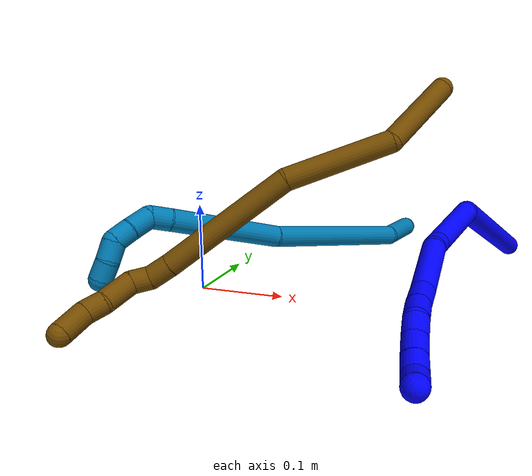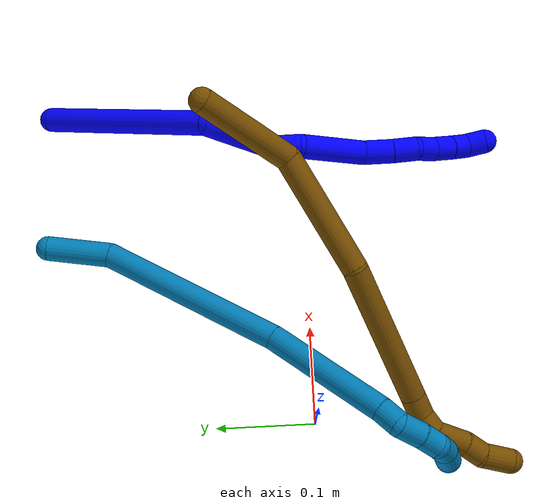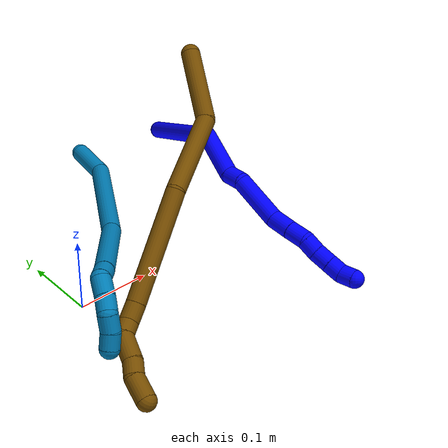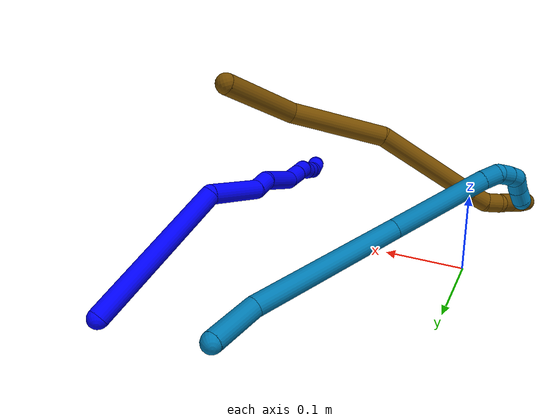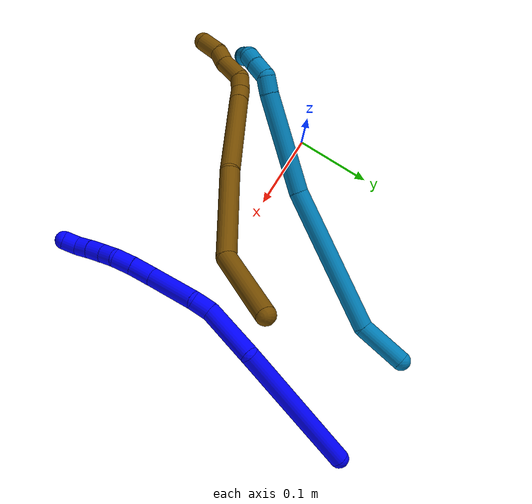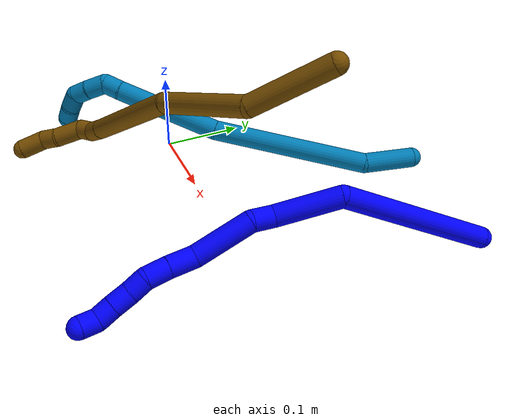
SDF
<sdf version="1.7">
 <world name="default">
  <model name="1">
   <static>0</static>
   <link name="1">
    <collision name="collision-cylinder-e_1_1_4">
     <pose>0.05638 -0.037189 -0.065543 2.62549 0.642316 1.80021</pose>
     <geometry><cylinder><radius>0.0125</radius><length>0.18823</length></cylinder></geometry>
     <surface>
      <friction><ode><mu>1.16</mu><mu2>1.16</mu2><slip1>0</slip1><slip2>0</slip2></ode></friction>
      <contact><ode><kp>1e+06</kp><kd>1</kd><max_vel>0</max_vel><min_depth>0.001</min_depth></ode></contact>
     </surface>
    </collision>
    <visual name="visual-cylinder-e_1_1_4">
     <pose>0.05638 -0.037189 -0.065543 2.62549 0.642316 1.80021</pose>
     <geometry><cylinder><radius>0.0125</radius><length>0.18823</length></cylinder></geometry>
     <material><ambient>0 0 1 1</ambient></material>
    </visual>
    <collision name="collision-cylinder-e_2_4_5">
     <pose>0.114122 -0.105321 -0.153749 2.20296 0.035507 0.069997</pose>
     <geometry><cylinder><radius>0.0125</radius><length>0.076755</length></cylinder></geometry>
     <surface>
      <friction><ode><mu>1.16</mu><mu2>1.16</mu2><slip1>0</slip1><slip2>0</slip2></ode></friction>
      <contact><ode><kp>1e+06</kp><kd>1</kd><max_vel>0</max_vel><min_depth>0.001</min_depth></ode></contact>
     </surface>
    </collision>
    <visual name="visual-cylinder-e_2_4_5">
     <pose>0.114122 -0.105321 -0.153749 2.20296 0.035507 0.069997</pose>
     <geometry><cylinder><radius>0.0125</radius><length>0.076755</length></cylinder></geometry>
     <material><ambient>0 0 1 1</ambient></material>
    </visual>
    <collision name="collision-cylinder-e_3_5_6">
     <pose>0.117973 -0.142558 -0.187363 2.61988 0.194553 0.700948</pose>
     <geometry><cylinder><radius>0.0125</radius><length>0.025749</length></cylinder></geometry>
     <surface>
      <friction><ode><mu>1.16</mu><mu2>1.16</mu2><slip1>0</slip1><slip2>0</slip2></ode></friction>
      <contact><ode><kp>1e+06</kp><kd>1</kd><max_vel>0</max_vel><min_depth>0.001</min_depth></ode></contact>
     </surface>
    </collision>
    <visual name="visual-cylinder-e_3_5_6">
     <pose>0.117973 -0.142558 -0.187363 2.61988 0.194553 0.700948</pose>
     <geometry><cylinder><radius>0.0125</radius><length>0.025749</length></cylinder></geometry>
     <material><ambient>0 0 1 1</ambient></material>
    </visual>
    <collision name="collision-cylinder-e_4_6_7">
     <pose>0.113312 -0.17193 -0.223152 2.39292 -0.207846 -0.518999</pose>
     <geometry><cylinder><radius>0.0125</radius><length>0.069299</length></cylinder></geometry>
     <surface>
      <friction><ode><mu>1.16</mu><mu2>1.16</mu2><slip1>0</slip1><slip2>0</slip2></ode></friction>
      <contact><ode><kp>1e+06</kp><kd>1</kd><max_vel>0</max_vel><min_depth>0.001</min_depth></ode></contact>
     </surface>
    </collision>
    <visual name="visual-cylinder-e_4_6_7">
     <pose>0.113312 -0.17193 -0.223152 2.39292 -0.207846 -0.518999</pose>
     <geometry><cylinder><radius>0.0125</radius><length>0.069299</length></cylinder></geometry>
     <material><ambient>0 0 1 1</ambient></material>
    </visual>
    <collision name="collision-cylinder-e_5_7_8">
     <pose>0.106541 -0.203095 -0.26092 2.58263 0.024795 0.086348</pose>
     <geometry><cylinder><radius>0.0125</radius><length>0.030513</length></cylinder></geometry>
     <surface>
      <friction><ode><mu>1.16</mu><mu2>1.16</mu2><slip1>0</slip1><slip2>0</slip2></ode></friction>
      <contact><ode><kp>1e+06</kp><kd>1</kd><max_vel>0</max_vel><min_depth>0.001</min_depth></ode></contact>
     </surface>
    </collision>
    <visual name="visual-cylinder-e_5_7_8">
     <pose>0.106541 -0.203095 -0.26092 2.58263 0.024795 0.086348</pose>
     <geometry><cylinder><radius>0.0125</radius><length>0.030513</length></cylinder></geometry>
     <material><ambient>0 0 1 1</ambient></material>
    </visual>
    <collision name="collision-cylinder-e_6_8_9">
     <pose>0.106536 -0.217521 -0.285051 2.62666 -0.029731 -0.1128</pose>
     <geometry><cylinder><radius>0.0125</radius><length>0.025749</length></cylinder></geometry>
     <surface>
      <friction><ode><mu>1.16</mu><mu2>1.16</mu2><slip1>0</slip1><slip2>0</slip2></ode></friction>
      <contact><ode><kp>1e+06</kp><kd>1</kd><max_vel>0</max_vel><min_depth>0.001</min_depth></ode></contact>
     </surface>
    </collision>
    <visual name="visual-cylinder-e_6_8_9">
     <pose>0.106536 -0.217521 -0.285051 2.62666 -0.029731 -0.1128</pose>
     <geometry><cylinder><radius>0.0125</radius><length>0.025749</length></cylinder></geometry>
     <material><ambient>0 0 1 1</ambient></material>
    </visual>
    <collision name="collision-cylinder-e_7_9_10">
     <pose>0.10222 -0.230234 -0.303656 2.43078 -0.382739 -0.962143</pose>
     <geometry><cylinder><radius>0.0125</radius><length>0.021066</length></cylinder></geometry>
     <surface>
      <friction><ode><mu>1.16</mu><mu2>1.16</mu2><slip1>0</slip1><slip2>0</slip2></ode></friction>
      <contact><ode><kp>1e+06</kp><kd>1</kd><max_vel>0</max_vel><min_depth>0.001</min_depth></ode></contact>
     </surface>
    </collision>
    <visual name="visual-cylinder-e_7_9_10">
     <pose>0.10222 -0.230234 -0.303656 2.43078 -0.382739 -0.962143</pose>
     <geometry><cylinder><radius>0.0125</radius><length>0.021066</length></cylinder></geometry>
     <material><ambient>0 0 1 1</ambient></material>
    </visual>
    <collision name="collision-cylinder-e_8_10_11">
     <pose>0.095186 -0.24257 -0.319888 2.54763 -0.283205 -0.871867</pose>
     <geometry><cylinder><radius>0.0125</radius><length>0.022188</length></cylinder></geometry>
     <surface>
      <friction><ode><mu>1.16</mu><mu2>1.16</mu2><slip1>0</slip1><slip2>0</slip2></ode></friction>
      <contact><ode><kp>1e+06</kp><kd>1</kd><max_vel>0</max_vel><min_depth>0.001</min_depth></ode></contact>
     </surface>
    </collision>
    <visual name="visual-cylinder-e_8_10_11">
     <pose>0.095186 -0.24257 -0.319888 2.54763 -0.283205 -0.871867</pose>
     <geometry><cylinder><radius>0.0125</radius><length>0.022188</length></cylinder></geometry>
     <material><ambient>0 0 1 1</ambient></material>
    </visual>
    <collision name="collision-cylinder-e_9_11_12">
     <pose>0.088803 -0.253685 -0.336683 2.56748 -0.33315 -1.03544</pose>
     <geometry><cylinder><radius>0.0125</radius><length>0.020081</length></cylinder></geometry>
     <surface>
      <friction><ode><mu>1.16</mu><mu2>1.16</mu2><slip1>0</slip1><slip2>0</slip2></ode></friction>
      <contact><ode><kp>1e+06</kp><kd>1</kd><max_vel>0</max_vel><min_depth>0.001</min_depth></ode></contact>
     </surface>
    </collision>
    <visual name="visual-cylinder-e_9_11_12">
     <pose>0.088803 -0.253685 -0.336683 2.56748 -0.33315 -1.03544</pose>
     <geometry><cylinder><radius>0.0125</radius><length>0.020081</length></cylinder></geometry>
     <material><ambient>0 0 1 1</ambient></material>
    </visual>
    <collision name="collision-cylinder-e_10_12_2">
     <pose>0.086436 -0.262387 -0.354152 2.78409 0.090113 0.4891</pose>
     <geometry><cylinder><radius>0.0125</radius><length>0.020369</length></cylinder></geometry>
     <surface>
      <friction><ode><mu>1.16</mu><mu2>1.16</mu2><slip1>0</slip1><slip2>0</slip2></ode></friction>
      <contact><ode><kp>1e+06</kp><kd>1</kd><max_vel>0</max_vel><min_depth>0.001</min_depth></ode></contact>
     </surface>
    </collision>
    <visual name="visual-cylinder-e_10_12_2">
     <pose>0.086436 -0.262387 -0.354152 2.78409 0.090113 0.4891</pose>
     <geometry><cylinder><radius>0.0125</radius><length>0.020369</length></cylinder></geometry>
     <material><ambient>0 0 1 1</ambient></material>
    </visual>
    <collision name="collision-sphere-2">
     <pose>0.087352 -0.265937 -0.363654 0 -0 0</pose>
     <geometry><sphere><radius>0.0125</radius></sphere></geometry>
     <surface>
      <friction><ode><mu>1.16</mu><mu2>1.16</mu2><slip1>0</slip1><slip2>0</slip2></ode></friction>
      <contact><ode><kp>1e+06</kp><kd>1</kd><max_vel>0</max_vel><min_depth>0.001</min_depth></ode></contact>
     </surface>
    </collision>
    <visual name="visual-sphere-2">
     <pose>0.087352 -0.265937 -0.363654 0 -0 0</pose>
     <geometry><sphere><radius>0.0125</radius></sphere></geometry>
     <material><ambient>0 0 1 1</ambient></material>
    </visual>
    <collision name="collision-sphere-12">
     <pose>0.085519 -0.258838 -0.34465 0 -0 0</pose>
     <geometry><sphere><radius>0.0125</radius></sphere></geometry>
     <surface>
      <friction><ode><mu>1.16</mu><mu2>1.16</mu2><slip1>0</slip1><slip2>0</slip2></ode></friction>
      <contact><ode><kp>1e+06</kp><kd>1</kd><max_vel>0</max_vel><min_depth>0.001</min_depth></ode></contact>
     </surface>
    </collision>
    <visual name="visual-sphere-12">
     <pose>0.085519 -0.258838 -0.34465 0 -0 0</pose>
     <geometry><sphere><radius>0.0125</radius></sphere></geometry>
     <material><ambient>0 0 1 1</ambient></material>
    </visual>
    <collision name="collision-sphere-11">
     <pose>0.092086 -0.248532 -0.328716 0 -0 0</pose>
     <geometry><sphere><radius>0.0125</radius></sphere></geometry>
     <surface>
      <friction><ode><mu>1.16</mu><mu2>1.16</mu2><slip1>0</slip1><slip2>0</slip2></ode></friction>
      <contact><ode><kp>1e+06</kp><kd>1</kd><max_vel>0</max_vel><min_depth>0.001</min_depth></ode></contact>
     </surface>
    </collision>
    <visual name="visual-sphere-11">
     <pose>0.092086 -0.248532 -0.328716 0 -0 0</pose>
     <geometry><sphere><radius>0.0125</radius></sphere></geometry>
     <material><ambient>0 0 1 1</ambient></material>
    </visual>
    <collision name="collision-sphere-10">
     <pose>0.098286 -0.236609 -0.311061 0 -0 0</pose>
     <geometry><sphere><radius>0.0125</radius></sphere></geometry>
     <surface>
      <friction><ode><mu>1.16</mu><mu2>1.16</mu2><slip1>0</slip1><slip2>0</slip2></ode></friction>
      <contact><ode><kp>1e+06</kp><kd>1</kd><max_vel>0</max_vel><min_depth>0.001</min_depth></ode></contact>
     </surface>
    </collision>
    <visual name="visual-sphere-10">
     <pose>0.098286 -0.236609 -0.311061 0 -0 0</pose>
     <geometry><sphere><radius>0.0125</radius></sphere></geometry>
     <material><ambient>0 0 1 1</ambient></material>
    </visual>
    <collision name="collision-sphere-9">
     <pose>0.106153 -0.223859 -0.296251 0 -0 0</pose>
     <geometry><sphere><radius>0.0125</radius></sphere></geometry>
     <surface>
      <friction><ode><mu>1.16</mu><mu2>1.16</mu2><slip1>0</slip1><slip2>0</slip2></ode></friction>
      <contact><ode><kp>1e+06</kp><kd>1</kd><max_vel>0</max_vel><min_depth>0.001</min_depth></ode></contact>
     </surface>
    </collision>
    <visual name="visual-sphere-9">
     <pose>0.106153 -0.223859 -0.296251 0 -0 0</pose>
     <geometry><sphere><radius>0.0125</radius></sphere></geometry>
     <material><ambient>0 0 1 1</ambient></material>
    </visual>
    <collision name="collision-sphere-4">
     <pose>0.11276 -0.074379 -0.131087 0 -0 0</pose>
     <geometry><sphere><radius>0.0125</radius></sphere></geometry>
     <surface>
      <friction><ode><mu>1.16</mu><mu2>1.16</mu2><slip1>0</slip1><slip2>0</slip2></ode></friction>
      <contact><ode><kp>1e+06</kp><kd>1</kd><max_vel>0</max_vel><min_depth>0.001</min_depth></ode></contact>
     </surface>
    </collision>
    <visual name="visual-sphere-4">
     <pose>0.11276 -0.074379 -0.131087 0 -0 0</pose>
     <geometry><sphere><radius>0.0125</radius></sphere></geometry>
     <material><ambient>0 0 1 1</ambient></material>
    </visual>
    <collision name="collision-sphere-1">
     <geometry><sphere><radius>0.0125</radius></sphere></geometry>
     <surface>
      <friction><ode><mu>1.16</mu><mu2>1.16</mu2><slip1>0</slip1><slip2>0</slip2></ode></friction>
      <contact><ode><kp>1e+06</kp><kd>1</kd><max_vel>0</max_vel><min_depth>0.001</min_depth></ode></contact>
     </surface>
    </collision>
    <visual name="visual-sphere-1">
     <geometry><sphere><radius>0.0125</radius></sphere></geometry>
     <material><ambient>0 0 1 1</ambient></material>
    </visual>
    <collision name="collision-sphere-8">
     <pose>0.106919 -0.211184 -0.273851 0 -0 0</pose>
     <geometry><sphere><radius>0.0125</radius></sphere></geometry>
     <surface>
      <friction><ode><mu>1.16</mu><mu2>1.16</mu2><slip1>0</slip1><slip2>0</slip2></ode></friction>
      <contact><ode><kp>1e+06</kp><kd>1</kd><max_vel>0</max_vel><min_depth>0.001</min_depth></ode></contact>
     </surface>
    </collision>
    <visual name="visual-sphere-8">
     <pose>0.106919 -0.211184 -0.273851 0 -0 0</pose>
     <geometry><sphere><radius>0.0125</radius></sphere></geometry>
     <material><ambient>0 0 1 1</ambient></material>
    </visual>
    <collision name="collision-sphere-5">
     <pose>0.115484 -0.136262 -0.176412 0 -0 0</pose>
     <geometry><sphere><radius>0.0125</radius></sphere></geometry>
     <surface>
      <friction><ode><mu>1.16</mu><mu2>1.16</mu2><slip1>0</slip1><slip2>0</slip2></ode></friction>
      <contact><ode><kp>1e+06</kp><kd>1</kd><max_vel>0</max_vel><min_depth>0.001</min_depth></ode></contact>
     </surface>
    </collision>
    <visual name="visual-sphere-5">
     <pose>0.115484 -0.136262 -0.176412 0 -0 0</pose>
     <geometry><sphere><radius>0.0125</radius></sphere></geometry>
     <material><ambient>0 0 1 1</ambient></material>
    </visual>
    <collision name="collision-sphere-6">
     <pose>0.120462 -0.148853 -0.198314 0 -0 0</pose>
     <geometry><sphere><radius>0.0125</radius></sphere></geometry>
     <surface>
      <friction><ode><mu>1.16</mu><mu2>1.16</mu2><slip1>0</slip1><slip2>0</slip2></ode></friction>
      <contact><ode><kp>1e+06</kp><kd>1</kd><max_vel>0</max_vel><min_depth>0.001</min_depth></ode></contact>
     </surface>
    </collision>
    <visual name="visual-sphere-6">
     <pose>0.120462 -0.148853 -0.198314 0 -0 0</pose>
     <geometry><sphere><radius>0.0125</radius></sphere></geometry>
     <material><ambient>0 0 1 1</ambient></material>
    </visual>
    <collision name="collision-sphere-7">
     <pose>0.106162 -0.195007 -0.247989 0 -0 0</pose>
     <geometry><sphere><radius>0.0125</radius></sphere></geometry>
     <surface>
      <friction><ode><mu>1.16</mu><mu2>1.16</mu2><slip1>0</slip1><slip2>0</slip2></ode></friction>
      <contact><ode><kp>1e+06</kp><kd>1</kd><max_vel>0</max_vel><min_depth>0.001</min_depth></ode></contact>
     </surface>
    </collision>
    <visual name="visual-sphere-7">
     <pose>0.106162 -0.195007 -0.247989 0 -0 0</pose>
     <geometry><sphere><radius>0.0125</radius></sphere></geometry>
     <material><ambient>0 0 1 1</ambient></material>
    </visual>
    <inertial>
     <pose>0.088131 -0.126277 -0.174395 0 -0 0</pose>
     <mass>0.5</mass>
     <inertia>
      <ixx>0.000408</ixx>
      <ixy>0</ixy>
      <ixz>0</ixz>
      <iyy>0.000628</iyy>
      <iyz>0</iyz>
      <izz>-7.7e-05</izz>
     </inertia>
    </inertial>
   </link>
   <pose>0.336672 0.261514 0.011496 1.89079 -1.01976 -2.88105</pose>
  </model>
  <model name="9">
   <static>0</static>
   <link name="9">
    <collision name="collision-cylinder-e_1_1_4">
     <pose>-0.010965 -0.019174 0.02348 0.684786 -0.34706 -0.124798</pose>
     <geometry><cylinder><radius>0.0125</radius><length>0.064474</length></cylinder></geometry>
     <surface>
      <friction><ode><mu>1.16</mu><mu2>1.16</mu2><slip1>0</slip1><slip2>0</slip2></ode></friction>
      <contact><ode><kp>1e+06</kp><kd>1</kd><max_vel>0</max_vel><min_depth>0.001</min_depth></ode></contact>
     </surface>
    </collision>
    <visual name="visual-cylinder-e_1_1_4">
     <pose>-0.010965 -0.019174 0.02348 0.684786 -0.34706 -0.124798</pose>
     <geometry><cylinder><radius>0.0125</radius><length>0.064474</length></cylinder></geometry>
     <material><ambient>0 0.490196 0.709804 1</ambient></material>
    </visual>
    <collision name="collision-cylinder-e_2_4_5">
     <pose>-0.075404 -0.108778 0.086455 1.05973 -0.584942 -0.349147</pose>
     <geometry><cylinder><radius>0.0125</radius><length>0.193696</length></cylinder></geometry>
     <surface>
      <friction><ode><mu>1.16</mu><mu2>1.16</mu2><slip1>0</slip1><slip2>0</slip2></ode></friction>
      <contact><ode><kp>1e+06</kp><kd>1</kd><max_vel>0</max_vel><min_depth>0.001</min_depth></ode></contact>
     </surface>
    </collision>
    <visual name="visual-cylinder-e_2_4_5">
     <pose>-0.075404 -0.108778 0.086455 1.05973 -0.584942 -0.349147</pose>
     <geometry><cylinder><radius>0.0125</radius><length>0.193696</length></cylinder></geometry>
     <material><ambient>0 0.490196 0.709804 1</ambient></material>
    </visual>
    <collision name="collision-cylinder-e_3_5_6">
     <pose>-0.172797 -0.225505 0.143678 1.20507 -0.724948 -0.510348</pose>
     <geometry><cylinder><radius>0.0125</radius><length>0.132464</length></cylinder></geometry>
     <surface>
      <friction><ode><mu>1.16</mu><mu2>1.16</mu2><slip1>0</slip1><slip2>0</slip2></ode></friction>
      <contact><ode><kp>1e+06</kp><kd>1</kd><max_vel>0</max_vel><min_depth>0.001</min_depth></ode></contact>
     </surface>
    </collision>
    <visual name="visual-cylinder-e_3_5_6">
     <pose>-0.172797 -0.225505 0.143678 1.20507 -0.724948 -0.510348</pose>
     <geometry><cylinder><radius>0.0125</radius><length>0.132464</length></cylinder></geometry>
     <material><ambient>0 0.490196 0.709804 1</ambient></material>
    </visual>
    <collision name="collision-cylinder-e_4_6_7">
     <pose>-0.224019 -0.280158 0.163314 1.3465 -0.705802 -0.571436</pose>
     <geometry><cylinder><radius>0.0125</radius><length>0.022517</length></cylinder></geometry>
     <surface>
      <friction><ode><mu>1.16</mu><mu2>1.16</mu2><slip1>0</slip1><slip2>0</slip2></ode></friction>
      <contact><ode><kp>1e+06</kp><kd>1</kd><max_vel>0</max_vel><min_depth>0.001</min_depth></ode></contact>
     </surface>
    </collision>
    <visual name="visual-cylinder-e_4_6_7">
     <pose>-0.224019 -0.280158 0.163314 1.3465 -0.705802 -0.571436</pose>
     <geometry><cylinder><radius>0.0125</radius><length>0.022517</length></cylinder></geometry>
     <material><ambient>0 0.490196 0.709804 1</ambient></material>
    </visual>
    <collision name="collision-cylinder-e_5_7_8">
     <pose>-0.231674 -0.299573 0.171278 1.06971 -0.02797 -0.016572</pose>
     <geometry><cylinder><radius>0.0125</radius><length>0.025234</length></cylinder></geometry>
     <surface>
      <friction><ode><mu>1.16</mu><mu2>1.16</mu2><slip1>0</slip1><slip2>0</slip2></ode></friction>
      <contact><ode><kp>1e+06</kp><kd>1</kd><max_vel>0</max_vel><min_depth>0.001</min_depth></ode></contact>
     </surface>
    </collision>
    <visual name="visual-cylinder-e_5_7_8">
     <pose>-0.231674 -0.299573 0.171278 1.06971 -0.02797 -0.016572</pose>
     <geometry><cylinder><radius>0.0125</radius><length>0.025234</length></cylinder></geometry>
     <material><ambient>0 0.490196 0.709804 1</ambient></material>
    </visual>
    <collision name="collision-cylinder-e_6_8_9">
     <pose>-0.231605 -0.319884 0.181446 1.15264 0.041628 0.027057</pose>
     <geometry><cylinder><radius>0.0125</radius><length>0.02026</length></cylinder></geometry>
     <surface>
      <friction><ode><mu>1.16</mu><mu2>1.16</mu2><slip1>0</slip1><slip2>0</slip2></ode></friction>
      <contact><ode><kp>1e+06</kp><kd>1</kd><max_vel>0</max_vel><min_depth>0.001</min_depth></ode></contact>
     </surface>
    </collision>
    <visual name="visual-cylinder-e_6_8_9">
     <pose>-0.231605 -0.319884 0.181446 1.15264 0.041628 0.027057</pose>
     <geometry><cylinder><radius>0.0125</radius><length>0.02026</length></cylinder></geometry>
     <material><ambient>0 0.490196 0.709804 1</ambient></material>
    </visual>
    <collision name="collision-cylinder-e_7_9_10">
     <pose>-0.22438 -0.33672 0.18844 1.20758 0.697629 0.491535</pose>
     <geometry><cylinder><radius>0.0125</radius><length>0.021182</length></cylinder></geometry>
     <surface>
      <friction><ode><mu>1.16</mu><mu2>1.16</mu2><slip1>0</slip1><slip2>0</slip2></ode></friction>
      <contact><ode><kp>1e+06</kp><kd>1</kd><max_vel>0</max_vel><min_depth>0.001</min_depth></ode></contact>
     </surface>
    </collision>
    <visual name="visual-cylinder-e_7_9_10">
     <pose>-0.22438 -0.33672 0.18844 1.20758 0.697629 0.491535</pose>
     <geometry><cylinder><radius>0.0125</radius><length>0.021182</length></cylinder></geometry>
     <material><ambient>0 0.490196 0.709804 1</ambient></material>
    </visual>
    <collision name="collision-cylinder-e_8_10_2">
     <pose>-0.211186 -0.352097 0.191795 1.51036 0.68614 0.648716</pose>
     <geometry><cylinder><radius>0.0125</radius><length>0.020173</length></cylinder></geometry>
     <surface>
      <friction><ode><mu>1.16</mu><mu2>1.16</mu2><slip1>0</slip1><slip2>0</slip2></ode></friction>
      <contact><ode><kp>1e+06</kp><kd>1</kd><max_vel>0</max_vel><min_depth>0.001</min_depth></ode></contact>
     </surface>
    </collision>
    <visual name="visual-cylinder-e_8_10_2">
     <pose>-0.211186 -0.352097 0.191795 1.51036 0.68614 0.648716</pose>
     <geometry><cylinder><radius>0.0125</radius><length>0.020173</length></cylinder></geometry>
     <material><ambient>0 0.490196 0.709804 1</ambient></material>
    </visual>
    <collision name="collision-sphere-2">
     <pose>-0.204796 -0.359886 0.192267 0 -0 0</pose>
     <geometry><sphere><radius>0.0125</radius></sphere></geometry>
     <surface>
      <friction><ode><mu>1.16</mu><mu2>1.16</mu2><slip1>0</slip1><slip2>0</slip2></ode></friction>
      <contact><ode><kp>1e+06</kp><kd>1</kd><max_vel>0</max_vel><min_depth>0.001</min_depth></ode></contact>
     </surface>
    </collision>
    <visual name="visual-sphere-2">
     <pose>-0.204796 -0.359886 0.192267 0 -0 0</pose>
     <geometry><sphere><radius>0.0125</radius></sphere></geometry>
     <material><ambient>0 0.490196 0.709804 1</ambient></material>
    </visual>
    <collision name="collision-sphere-10">
     <pose>-0.217577 -0.344307 0.191324 0 -0 0</pose>
     <geometry><sphere><radius>0.0125</radius></sphere></geometry>
     <surface>
      <friction><ode><mu>1.16</mu><mu2>1.16</mu2><slip1>0</slip1><slip2>0</slip2></ode></friction>
      <contact><ode><kp>1e+06</kp><kd>1</kd><max_vel>0</max_vel><min_depth>0.001</min_depth></ode></contact>
     </surface>
    </collision>
    <visual name="visual-sphere-10">
     <pose>-0.217577 -0.344307 0.191324 0 -0 0</pose>
     <geometry><sphere><radius>0.0125</radius></sphere></geometry>
     <material><ambient>0 0.490196 0.709804 1</ambient></material>
    </visual>
    <collision name="collision-sphere-9">
     <pose>-0.231184 -0.329133 0.185556 0 -0 0</pose>
     <geometry><sphere><radius>0.0125</radius></sphere></geometry>
     <surface>
      <friction><ode><mu>1.16</mu><mu2>1.16</mu2><slip1>0</slip1><slip2>0</slip2></ode></friction>
      <contact><ode><kp>1e+06</kp><kd>1</kd><max_vel>0</max_vel><min_depth>0.001</min_depth></ode></contact>
     </surface>
    </collision>
    <visual name="visual-sphere-9">
     <pose>-0.231184 -0.329133 0.185556 0 -0 0</pose>
     <geometry><sphere><radius>0.0125</radius></sphere></geometry>
     <material><ambient>0 0.490196 0.709804 1</ambient></material>
    </visual>
    <collision name="collision-sphere-4">
     <pose>-0.02193 -0.038349 0.046961 0 -0 0</pose>
     <geometry><sphere><radius>0.0125</radius></sphere></geometry>
     <surface>
      <friction><ode><mu>1.16</mu><mu2>1.16</mu2><slip1>0</slip1><slip2>0</slip2></ode></friction>
      <contact><ode><kp>1e+06</kp><kd>1</kd><max_vel>0</max_vel><min_depth>0.001</min_depth></ode></contact>
     </surface>
    </collision>
    <visual name="visual-sphere-4">
     <pose>-0.02193 -0.038349 0.046961 0 -0 0</pose>
     <geometry><sphere><radius>0.0125</radius></sphere></geometry>
     <material><ambient>0 0.490196 0.709804 1</ambient></material>
    </visual>
    <collision name="collision-sphere-1">
     <geometry><sphere><radius>0.0125</radius></sphere></geometry>
     <surface>
      <friction><ode><mu>1.16</mu><mu2>1.16</mu2><slip1>0</slip1><slip2>0</slip2></ode></friction>
      <contact><ode><kp>1e+06</kp><kd>1</kd><max_vel>0</max_vel><min_depth>0.001</min_depth></ode></contact>
     </surface>
    </collision>
    <visual name="visual-sphere-1">
     <geometry><sphere><radius>0.0125</radius></sphere></geometry>
     <material><ambient>0 0.490196 0.709804 1</ambient></material>
    </visual>
    <collision name="collision-sphere-8">
     <pose>-0.232027 -0.310634 0.177336 0 -0 0</pose>
     <geometry><sphere><radius>0.0125</radius></sphere></geometry>
     <surface>
      <friction><ode><mu>1.16</mu><mu2>1.16</mu2><slip1>0</slip1><slip2>0</slip2></ode></friction>
      <contact><ode><kp>1e+06</kp><kd>1</kd><max_vel>0</max_vel><min_depth>0.001</min_depth></ode></contact>
     </surface>
    </collision>
    <visual name="visual-sphere-8">
     <pose>-0.232027 -0.310634 0.177336 0 -0 0</pose>
     <geometry><sphere><radius>0.0125</radius></sphere></geometry>
     <material><ambient>0 0.490196 0.709804 1</ambient></material>
    </visual>
    <collision name="collision-sphere-5">
     <pose>-0.128879 -0.179207 0.125948 0 -0 0</pose>
     <geometry><sphere><radius>0.0125</radius></sphere></geometry>
     <surface>
      <friction><ode><mu>1.16</mu><mu2>1.16</mu2><slip1>0</slip1><slip2>0</slip2></ode></friction>
      <contact><ode><kp>1e+06</kp><kd>1</kd><max_vel>0</max_vel><min_depth>0.001</min_depth></ode></contact>
     </surface>
    </collision>
    <visual name="visual-sphere-5">
     <pose>-0.128879 -0.179207 0.125948 0 -0 0</pose>
     <geometry><sphere><radius>0.0125</radius></sphere></geometry>
     <material><ambient>0 0.490196 0.709804 1</ambient></material>
    </visual>
    <collision name="collision-sphere-6">
     <pose>-0.216716 -0.271803 0.161408 0 -0 0</pose>
     <geometry><sphere><radius>0.0125</radius></sphere></geometry>
     <surface>
      <friction><ode><mu>1.16</mu><mu2>1.16</mu2><slip1>0</slip1><slip2>0</slip2></ode></friction>
      <contact><ode><kp>1e+06</kp><kd>1</kd><max_vel>0</max_vel><min_depth>0.001</min_depth></ode></contact>
     </surface>
    </collision>
    <visual name="visual-sphere-6">
     <pose>-0.216716 -0.271803 0.161408 0 -0 0</pose>
     <geometry><sphere><radius>0.0125</radius></sphere></geometry>
     <material><ambient>0 0.490196 0.709804 1</ambient></material>
    </visual>
    <collision name="collision-sphere-7">
     <pose>-0.231321 -0.288512 0.165219 0 -0 0</pose>
     <geometry><sphere><radius>0.0125</radius></sphere></geometry>
     <surface>
      <friction><ode><mu>1.16</mu><mu2>1.16</mu2><slip1>0</slip1><slip2>0</slip2></ode></friction>
      <contact><ode><kp>1e+06</kp><kd>1</kd><max_vel>0</max_vel><min_depth>0.001</min_depth></ode></contact>
     </surface>
    </collision>
    <visual name="visual-sphere-7">
     <pose>-0.231321 -0.288512 0.165219 0 -0 0</pose>
     <geometry><sphere><radius>0.0125</radius></sphere></geometry>
     <material><ambient>0 0.490196 0.709804 1</ambient></material>
    </visual>
    <inertial>
     <pose>-0.125595 -0.173523 0.113656 0 -0 0</pose>
     <mass>0.5</mass>
     <inertia><ixx>0.000374</ixx><ixy>0</ixy><ixz>0</ixz><iyy>0.000251</iyy><iyz>0</iyz><izz>0.0011</izz></inertia>
    </inertial>
   </link>
   <pose>0.189969 0.264083 0.027143 1.60016 1.10398 0.611891</pose>
  </model>
  <model name="12">
   <static>0</static>
   <link name="12">
    <collision name="collision-cylinder-e_1_1_4">
     <pose>-0.0249 -0.036738 0.023232 1.00691 -0.520206 -0.291095</pose>
     <geometry><cylinder><radius>0.0125</radius><length>0.100188</length></cylinder></geometry>
     <surface>
      <friction><ode><mu>1.16</mu><mu2>1.16</mu2><slip1>0</slip1><slip2>0</slip2></ode></friction>
      <contact><ode><kp>1e+06</kp><kd>1</kd><max_vel>0</max_vel><min_depth>0.001</min_depth></ode></contact>
     </surface>
    </collision>
    <visual name="visual-cylinder-e_1_1_4">
     <pose>-0.0249 -0.036738 0.023232 1.00691 -0.520206 -0.291095</pose>
     <geometry><cylinder><radius>0.0125</radius><length>0.100188</length></cylinder></geometry>
     <material><ambient>0.466667 0.301961 0 1</ambient></material>
    </visual>
    <collision name="collision-cylinder-e_2_4_5">
     <pose>-0.047407 -0.125278 0.076891 1.03973 0.039807 0.022787</pose>
     <geometry><cylinder><radius>0.0125</radius><length>0.120249</length></cylinder></geometry>
     <surface>
      <friction><ode><mu>1.16</mu><mu2>1.16</mu2><slip1>0</slip1><slip2>0</slip2></ode></friction>
      <contact><ode><kp>1e+06</kp><kd>1</kd><max_vel>0</max_vel><min_depth>0.001</min_depth></ode></contact>
     </surface>
    </collision>
    <visual name="visual-cylinder-e_2_4_5">
     <pose>-0.047407 -0.125278 0.076891 1.03973 0.039807 0.022787</pose>
     <geometry><cylinder><radius>0.0125</radius><length>0.120249</length></cylinder></geometry>
     <material><ambient>0.466667 0.301961 0 1</ambient></material>
    </visual>
    <collision name="collision-cylinder-e_3_5_6">
     <pose>-0.049605 -0.226941 0.161578 0.743156 -0.06222 -0.024253</pose>
     <geometry><cylinder><radius>0.0125</radius><length>0.147666</length></cylinder></geometry>
     <surface>
      <friction><ode><mu>1.16</mu><mu2>1.16</mu2><slip1>0</slip1><slip2>0</slip2></ode></friction>
      <contact><ode><kp>1e+06</kp><kd>1</kd><max_vel>0</max_vel><min_depth>0.001</min_depth></ode></contact>
     </surface>
    </collision>
    <visual name="visual-cylinder-e_3_5_6">
     <pose>-0.049605 -0.226941 0.161578 0.743156 -0.06222 -0.024253</pose>
     <geometry><cylinder><radius>0.0125</radius><length>0.147666</length></cylinder></geometry>
     <material><ambient>0.466667 0.301961 0 1</ambient></material>
    </visual>
    <collision name="collision-cylinder-e_4_6_7">
     <pose>-0.054411 -0.285285 0.224349 0.783823 -0.017925 -0.007408</pose>
     <geometry><cylinder><radius>0.0125</radius><length>0.024037</length></cylinder></geometry>
     <surface>
      <friction><ode><mu>1.16</mu><mu2>1.16</mu2><slip1>0</slip1><slip2>0</slip2></ode></friction>
      <contact><ode><kp>1e+06</kp><kd>1</kd><max_vel>0</max_vel><min_depth>0.001</min_depth></ode></contact>
     </surface>
    </collision>
    <visual name="visual-cylinder-e_4_6_7">
     <pose>-0.054411 -0.285285 0.224349 0.783823 -0.017925 -0.007408</pose>
     <geometry><cylinder><radius>0.0125</radius><length>0.024037</length></cylinder></geometry>
     <material><ambient>0.466667 0.301961 0 1</ambient></material>
    </visual>
    <collision name="collision-cylinder-e_5_7_8">
     <pose>-0.054169 -0.303285 0.236548 1.20107 0.044844 0.030718</pose>
     <geometry><cylinder><radius>0.0125</radius><length>0.020434</length></cylinder></geometry>
     <surface>
      <friction><ode><mu>1.16</mu><mu2>1.16</mu2><slip1>0</slip1><slip2>0</slip2></ode></friction>
      <contact><ode><kp>1e+06</kp><kd>1</kd><max_vel>0</max_vel><min_depth>0.001</min_depth></ode></contact>
     </surface>
    </collision>
    <visual name="visual-cylinder-e_5_7_8">
     <pose>-0.054169 -0.303285 0.236548 1.20107 0.044844 0.030718</pose>
     <geometry><cylinder><radius>0.0125</radius><length>0.020434</length></cylinder></geometry>
     <material><ambient>0.466667 0.301961 0 1</ambient></material>
    </visual>
    <collision name="collision-cylinder-e_6_8_9">
     <pose>-0.06341 -0.326608 0.24419 1.29185 -0.594021 -0.453483</pose>
     <geometry><cylinder><radius>0.0125</radius><length>0.03466</length></cylinder></geometry>
     <surface>
      <friction><ode><mu>1.16</mu><mu2>1.16</mu2><slip1>0</slip1><slip2>0</slip2></ode></friction>
      <contact><ode><kp>1e+06</kp><kd>1</kd><max_vel>0</max_vel><min_depth>0.001</min_depth></ode></contact>
     </surface>
    </collision>
    <visual name="visual-cylinder-e_6_8_9">
     <pose>-0.06341 -0.326608 0.24419 1.29185 -0.594021 -0.453483</pose>
     <geometry><cylinder><radius>0.0125</radius><length>0.03466</length></cylinder></geometry>
     <material><ambient>0.466667 0.301961 0 1</ambient></material>
    </visual>
    <collision name="collision-cylinder-e_7_9_10">
     <pose>-0.076736 -0.349773 0.251549 1.22189 -0.349235 -0.245848</pose>
     <geometry><cylinder><radius>0.0125</radius><length>0.021198</length></cylinder></geometry>
     <surface>
      <friction><ode><mu>1.16</mu><mu2>1.16</mu2><slip1>0</slip1><slip2>0</slip2></ode></friction>
      <contact><ode><kp>1e+06</kp><kd>1</kd><max_vel>0</max_vel><min_depth>0.001</min_depth></ode></contact>
     </surface>
    </collision>
    <visual name="visual-cylinder-e_7_9_10">
     <pose>-0.076736 -0.349773 0.251549 1.22189 -0.349235 -0.245848</pose>
     <geometry><cylinder><radius>0.0125</radius><length>0.021198</length></cylinder></geometry>
     <material><ambient>0.466667 0.301961 0 1</ambient></material>
    </visual>
    <collision name="collision-cylinder-e_8_10_2">
     <pose>-0.090704 -0.370671 0.257963 1.31572 -0.714397 -0.561509</pose>
     <geometry><cylinder><radius>0.0125</radius><length>0.031568</length></cylinder></geometry>
     <surface>
      <friction><ode><mu>1.16</mu><mu2>1.16</mu2><slip1>0</slip1><slip2>0</slip2></ode></friction>
      <contact><ode><kp>1e+06</kp><kd>1</kd><max_vel>0</max_vel><min_depth>0.001</min_depth></ode></contact>
     </surface>
    </collision>
    <visual name="visual-cylinder-e_8_10_2">
     <pose>-0.090704 -0.370671 0.257963 1.31572 -0.714397 -0.561509</pose>
     <geometry><cylinder><radius>0.0125</radius><length>0.031568</length></cylinder></geometry>
     <material><ambient>0.466667 0.301961 0 1</ambient></material>
    </visual>
    <collision name="collision-sphere-2">
     <pose>-0.101045 -0.38221 0.260971 0 -0 0</pose>
     <geometry><sphere><radius>0.0125</radius></sphere></geometry>
     <surface>
      <friction><ode><mu>1.16</mu><mu2>1.16</mu2><slip1>0</slip1><slip2>0</slip2></ode></friction>
      <contact><ode><kp>1e+06</kp><kd>1</kd><max_vel>0</max_vel><min_depth>0.001</min_depth></ode></contact>
     </surface>
    </collision>
    <visual name="visual-sphere-2">
     <pose>-0.101045 -0.38221 0.260971 0 -0 0</pose>
     <geometry><sphere><radius>0.0125</radius></sphere></geometry>
     <material><ambient>0.466667 0.301961 0 1</ambient></material>
    </visual>
    <collision name="collision-sphere-10">
     <pose>-0.080363 -0.359132 0.254954 0 -0 0</pose>
     <geometry><sphere><radius>0.0125</radius></sphere></geometry>
     <surface>
      <friction><ode><mu>1.16</mu><mu2>1.16</mu2><slip1>0</slip1><slip2>0</slip2></ode></friction>
      <contact><ode><kp>1e+06</kp><kd>1</kd><max_vel>0</max_vel><min_depth>0.001</min_depth></ode></contact>
     </surface>
    </collision>
    <visual name="visual-sphere-10">
     <pose>-0.080363 -0.359132 0.254954 0 -0 0</pose>
     <geometry><sphere><radius>0.0125</radius></sphere></geometry>
     <material><ambient>0.466667 0.301961 0 1</ambient></material>
    </visual>
    <collision name="collision-sphere-9">
     <pose>-0.07311 -0.340414 0.248144 0 -0 0</pose>
     <geometry><sphere><radius>0.0125</radius></sphere></geometry>
     <surface>
      <friction><ode><mu>1.16</mu><mu2>1.16</mu2><slip1>0</slip1><slip2>0</slip2></ode></friction>
      <contact><ode><kp>1e+06</kp><kd>1</kd><max_vel>0</max_vel><min_depth>0.001</min_depth></ode></contact>
     </surface>
    </collision>
    <visual name="visual-sphere-9">
     <pose>-0.07311 -0.340414 0.248144 0 -0 0</pose>
     <geometry><sphere><radius>0.0125</radius></sphere></geometry>
     <material><ambient>0.466667 0.301961 0 1</ambient></material>
    </visual>
    <collision name="collision-sphere-4">
     <pose>-0.049799 -0.073476 0.046465 0 -0 0</pose>
     <geometry><sphere><radius>0.0125</radius></sphere></geometry>
     <surface>
      <friction><ode><mu>1.16</mu><mu2>1.16</mu2><slip1>0</slip1><slip2>0</slip2></ode></friction>
      <contact><ode><kp>1e+06</kp><kd>1</kd><max_vel>0</max_vel><min_depth>0.001</min_depth></ode></contact>
     </surface>
    </collision>
    <visual name="visual-sphere-4">
     <pose>-0.049799 -0.073476 0.046465 0 -0 0</pose>
     <geometry><sphere><radius>0.0125</radius></sphere></geometry>
     <material><ambient>0.466667 0.301961 0 1</ambient></material>
    </visual>
    <collision name="collision-sphere-1">
     <geometry><sphere><radius>0.0125</radius></sphere></geometry>
     <surface>
      <friction><ode><mu>1.16</mu><mu2>1.16</mu2><slip1>0</slip1><slip2>0</slip2></ode></friction>
      <contact><ode><kp>1e+06</kp><kd>1</kd><max_vel>0</max_vel><min_depth>0.001</min_depth></ode></contact>
     </surface>
    </collision>
    <visual name="visual-sphere-1">
     <geometry><sphere><radius>0.0125</radius></sphere></geometry>
     <material><ambient>0.466667 0.301961 0 1</ambient></material>
    </visual>
    <collision name="collision-sphere-8">
     <pose>-0.053711 -0.312802 0.240236 0 -0 0</pose>
     <geometry><sphere><radius>0.0125</radius></sphere></geometry>
     <surface>
      <friction><ode><mu>1.16</mu><mu2>1.16</mu2><slip1>0</slip1><slip2>0</slip2></ode></friction>
      <contact><ode><kp>1e+06</kp><kd>1</kd><max_vel>0</max_vel><min_depth>0.001</min_depth></ode></contact>
     </surface>
    </collision>
    <visual name="visual-sphere-8">
     <pose>-0.053711 -0.312802 0.240236 0 -0 0</pose>
     <geometry><sphere><radius>0.0125</radius></sphere></geometry>
     <material><ambient>0.466667 0.301961 0 1</ambient></material>
    </visual>
    <collision name="collision-sphere-5">
     <pose>-0.045014 -0.177081 0.107317 0 -0 0</pose>
     <geometry><sphere><radius>0.0125</radius></sphere></geometry>
     <surface>
      <friction><ode><mu>1.16</mu><mu2>1.16</mu2><slip1>0</slip1><slip2>0</slip2></ode></friction>
      <contact><ode><kp>1e+06</kp><kd>1</kd><max_vel>0</max_vel><min_depth>0.001</min_depth></ode></contact>
     </surface>
    </collision>
    <visual name="visual-sphere-5">
     <pose>-0.045014 -0.177081 0.107317 0 -0 0</pose>
     <geometry><sphere><radius>0.0125</radius></sphere></geometry>
     <material><ambient>0.466667 0.301961 0 1</ambient></material>
    </visual>
    <collision name="collision-sphere-6">
     <pose>-0.054196 -0.276801 0.215839 0 -0 0</pose>
     <geometry><sphere><radius>0.0125</radius></sphere></geometry>
     <surface>
      <friction><ode><mu>1.16</mu><mu2>1.16</mu2><slip1>0</slip1><slip2>0</slip2></ode></friction>
      <contact><ode><kp>1e+06</kp><kd>1</kd><max_vel>0</max_vel><min_depth>0.001</min_depth></ode></contact>
     </surface>
    </collision>
    <visual name="visual-sphere-6">
     <pose>-0.054196 -0.276801 0.215839 0 -0 0</pose>
     <geometry><sphere><radius>0.0125</radius></sphere></geometry>
     <material><ambient>0.466667 0.301961 0 1</ambient></material>
    </visual>
    <collision name="collision-sphere-7">
     <pose>-0.054627 -0.293768 0.232859 0 -0 0</pose>
     <geometry><sphere><radius>0.0125</radius></sphere></geometry>
     <surface>
      <friction><ode><mu>1.16</mu><mu2>1.16</mu2><slip1>0</slip1><slip2>0</slip2></ode></friction>
      <contact><ode><kp>1e+06</kp><kd>1</kd><max_vel>0</max_vel><min_depth>0.001</min_depth></ode></contact>
     </surface>
    </collision>
    <visual name="visual-sphere-7">
     <pose>-0.054627 -0.293768 0.232859 0 -0 0</pose>
     <geometry><sphere><radius>0.0125</radius></sphere></geometry>
     <material><ambient>0.466667 0.301961 0 1</ambient></material>
    </visual>
    <inertial>
     <pose>-0.049245 -0.191495 0.135197 0 -0 0</pose>
     <mass>0.5</mass>
     <inertia><ixx>0.00047</ixx><ixy>0</ixy><ixz>0</ixz><iyy>0.000282</iyy><iyz>0</iyz><izz>0.00047</izz></inertia>
    </inertial>
   </link>
   <pose>0.259962 0.093884 0.232582 -2.97919 -0.451199 2.30324</pose>
  </model>
 </world>
</sdf>
